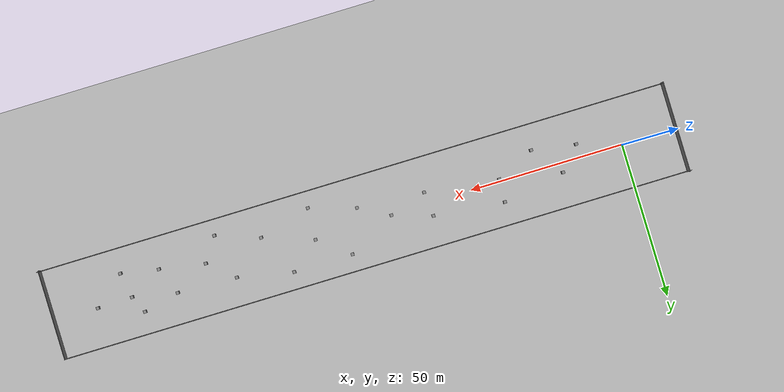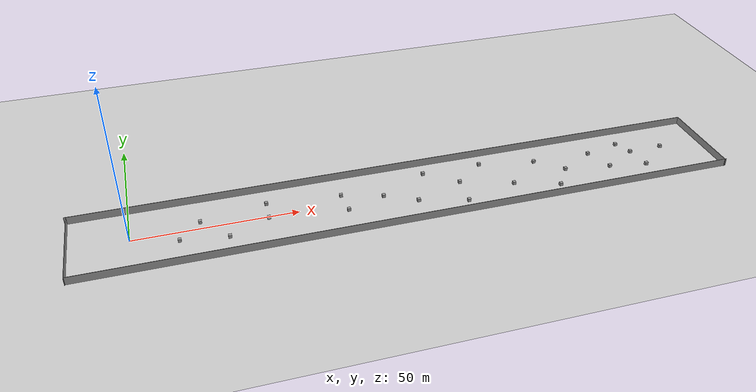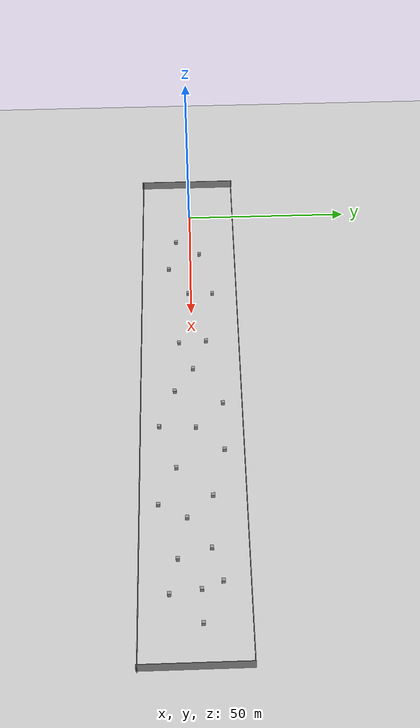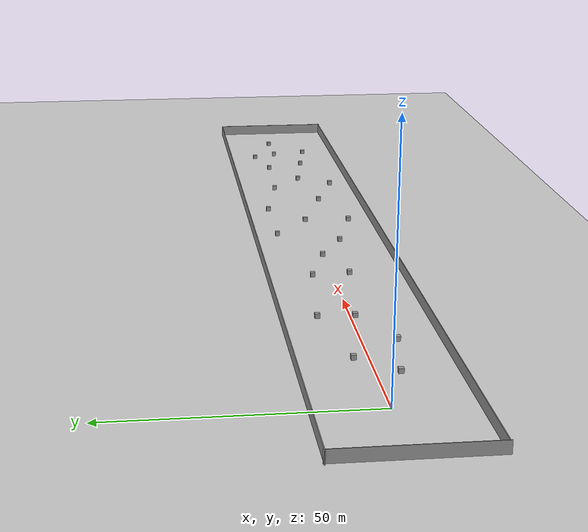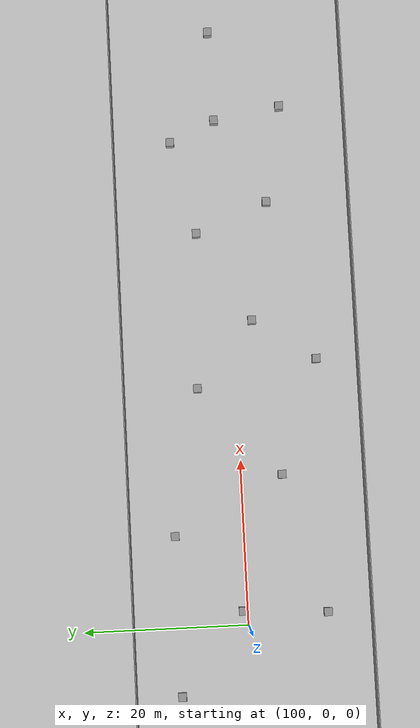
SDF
<sdf version="1.6">
 <world name="default">
  <light name="sun" type="directional">
   <pose>0 0 10 0 -0 0</pose>
   <diffuse>0.8 0.8 0.8 1</diffuse>
   <specular>0.2 0.2 0.2 1</specular>
   <attenuation>
    <range>1000</range>
    <constant>0.9</constant>
    <linear>0.01</linear>
    <quadratic>0.001</quadratic>
   </attenuation>
   <direction>-0.5 0.1 -0.9</direction>
  </light>
  <model name="ground_plane">
   <static>1</static>
   <link name="link">
    <collision name="collision">
     <geometry><plane><normal>0 0 1</normal><size>100 100</size></plane></geometry>
     <surface>
      <contact><collide_bitmask>65535</collide_bitmask></contact>
      <friction><ode><mu>100</mu><mu2>50</mu2></ode></friction>
     </surface>
    </collision>
    <visual name="visual">
     <cast_shadows>0</cast_shadows>
     <geometry><plane><normal>0 0 1</normal><size>100 100</size></plane></geometry>
     <material>
      <script><uri>file://media/materials/scripts/gazebo.material</uri><name>Gazebo/Grey</name></script>
     </material>
    </visual>
   </link>
  </model>
  <gravity>0 0 -9.8</gravity>
  <magnetic_field>6e-06 2.3e-05 -4.2e-05</magnetic_field>
  <atmosphere type="adiabatic"/>
  <physics name="default_physics" default="0" type="ode">
   <max_step_size>0.001</max_step_size>
   <real_time_factor>1</real_time_factor>
   <real_time_update_rate>1000</real_time_update_rate>
  </physics>
  <scene><ambient>0.4 0.4 0.4 1</ambient><background>0.7 0.7 0.7 1</background><shadows>1</shadows></scene>
  <audio><device>default</device></audio>
  <spherical_coordinates>
   <surface_model>EARTH_WGS84</surface_model>
   <latitude_deg>0</latitude_deg>
   <longitude_deg>0</longitude_deg>
   <elevation>0</elevation>
   <heading_deg>0</heading_deg>
  </spherical_coordinates>
  <model name="road">
   <pose>85.3073 -0.559593 0 0 -0 0</pose>
   <link name="Wall_13">
    <collision name="Wall_13_Collision">
     <geometry><box><size>206 0.15 2.5</size></box></geometry>
     <pose>0 0 1.25 0 -0 0</pose>
    </collision>
    <visual name="Wall_13_Visual">
     <pose>0 0 1.25 0 -0 0</pose>
     <geometry><box><size>206 0.15 2.5</size></box></geometry>
     <material>
      <script><uri>file://media/materials/scripts/gazebo.material</uri><name>Gazebo/Grey</name></script>
      <ambient>1 1 1 1</ambient>
     </material>
     <meta><layer>0</layer></meta>
    </visual>
    <pose>0.356298 -14.3749 0 0 -0 0</pose>
   </link>
   <link name="Wall_16">
    <collision name="Wall_16_Collision">
     <geometry><box><size>206.25 0.15 2.5</size></box></geometry>
     <pose>0 0 1.25 0 -0 0</pose>
    </collision>
    <visual name="Wall_16_Visual">
     <pose>0 0 1.25 0 -0 0</pose>
     <geometry><box><size>206.25 0.15 2.5</size></box></geometry>
     <material>
      <script><uri>file://media/materials/scripts/gazebo.material</uri><name>Gazebo/Grey</name></script>
      <ambient>1 1 1 1</ambient>
     </material>
     <meta><layer>0</layer></meta>
    </visual>
    <pose>-0.231302 14.4889 0 0 -0 0</pose>
   </link>
   <link name="Wall_17">
    <collision name="Wall_17_Collision">
     <geometry><box><size>29.25 0.15 2.5</size></box></geometry>
     <pose>0 0 1.25 0 -0 0</pose>
    </collision>
    <visual name="Wall_17_Visual">
     <pose>0 0 1.25 0 -0 0</pose>
     <geometry><box><size>29.25 0.15 2.5</size></box></geometry>
     <material>
      <script><uri>file://media/materials/scripts/gazebo.material</uri><name>Gazebo/Grey</name></script>
      <ambient>1 1 1 1</ambient>
     </material>
     <meta><layer>0</layer></meta>
    </visual>
    <pose>102.819 -0.061095 0 0 -0 -1.5708</pose>
   </link>
   <link name="Wall_19">
    <collision name="Wall_19_Collision">
     <geometry><box><size>29.5 0.15 2.5</size></box></geometry>
     <pose>0 0 1.25 0 -0 0</pose>
    </collision>
    <visual name="Wall_19_Visual">
     <pose>0 0 1.25 0 -0 0</pose>
     <geometry><box><size>29.5 0.15 2.5</size></box></geometry>
     <material>
      <script><uri>file://media/materials/scripts/gazebo.material</uri><name>Gazebo/Grey</name></script>
      <ambient>1 1 1 1</ambient>
     </material>
     <meta><layer>0</layer></meta>
    </visual>
    <pose>-102.723 0 0 0 -0 -1.5708</pose>
   </link>
   <static>1</static>
  </model>
  <model name="unit_box">
   <pose>28.2188 -6.73366 0.499995 0 1e-05 0</pose>
   <link name="link">
    <inertial>
     <mass>1</mass>
     <inertia>
      <ixx>0.166667</ixx>
      <ixy>0</ixy>
      <ixz>0</ixz>
      <iyy>0.166667</iyy>
      <iyz>0</iyz>
      <izz>0.166667</izz>
     </inertia>
    </inertial>
    <collision name="collision"><geometry><box><size>1 1 1</size></box></geometry></collision>
    <visual name="visual">
     <geometry><box><size>1 1 1</size></box></geometry>
     <material>
      <script><name>Gazebo/Grey</name><uri>file://media/materials/scripts/gazebo.material</uri></script>
     </material>
    </visual>
   </link>
  </model>
  <model name="unit_box_0">
   <pose>40.8851 6.56253 0.499995 -1e-05 -0 -0</pose>
   <link name="link">
    <inertial>
     <mass>1</mass>
     <inertia>
      <ixx>0.166667</ixx>
      <ixy>0</ixy>
      <ixz>0</ixz>
      <iyy>0.166667</iyy>
      <iyz>0</iyz>
      <izz>0.166667</izz>
     </inertia>
    </inertial>
    <collision name="collision"><geometry><box><size>1 1 1</size></box></geometry></collision>
    <visual name="visual">
     <geometry><box><size>1 1 1</size></box></geometry>
     <material>
      <script><name>Gazebo/Grey</name><uri>file://media/materials/scripts/gazebo.material</uri></script>
     </material>
    </visual>
   </link>
  </model>
  <model name="unit_box_1">
   <pose>40.5515 -0.823491 0.499995 0 1e-05 0</pose>
   <link name="link">
    <inertial>
     <mass>1</mass>
     <inertia>
      <ixx>0.166667</ixx>
      <ixy>0</ixy>
      <ixz>0</ixz>
      <iyy>0.166667</iyy>
      <iyz>0</iyz>
      <izz>0.166667</izz>
     </inertia>
    </inertial>
    <collision name="collision"><geometry><box><size>1 1 1</size></box></geometry></collision>
    <visual name="visual">
     <geometry><box><size>1 1 1</size></box></geometry>
     <material>
      <script><name>Gazebo/Grey</name><uri>file://media/materials/scripts/gazebo.material</uri></script>
     </material>
    </visual>
   </link>
  </model>
  <model name="unit_box_2">
   <pose>64.499 -3.78517 0.499995 -1e-05 -0 -0</pose>
   <link name="link">
    <inertial>
     <mass>1</mass>
     <inertia>
      <ixx>0.166667</ixx>
      <ixy>0</ixy>
      <ixz>0</ixz>
      <iyy>0.166667</iyy>
      <iyz>0</iyz>
      <izz>0.166667</izz>
     </inertia>
    </inertial>
    <collision name="collision"><geometry><box><size>1 1 1</size></box></geometry></collision>
    <visual name="visual">
     <geometry><box><size>1 1 1</size></box></geometry>
     <material>
      <script><name>Gazebo/Grey</name><uri>file://media/materials/scripts/gazebo.material</uri></script>
     </material>
    </visual>
   </link>
  </model>
  <model name="unit_box_3">
   <pose>63.826 4.20021 0.499995 0 1e-05 0</pose>
   <link name="link">
    <inertial>
     <mass>1</mass>
     <inertia>
      <ixx>0.166667</ixx>
      <ixy>0</ixy>
      <ixz>0</ixz>
      <iyy>0.166667</iyy>
      <iyz>0</iyz>
      <izz>0.166667</izz>
     </inertia>
    </inertial>
    <collision name="collision"><geometry><box><size>1 1 1</size></box></geometry></collision>
    <visual name="visual">
     <geometry><box><size>1 1 1</size></box></geometry>
     <material>
      <script><name>Gazebo/Grey</name><uri>file://media/materials/scripts/gazebo.material</uri></script>
     </material>
    </visual>
   </link>
  </model>
  <model name="unit_box_4">
   <pose>86.2836 -5.2195 0.499995 -1e-05 -0 -0</pose>
   <link name="link">
    <inertial>
     <mass>1</mass>
     <inertia>
      <ixx>0.166667</ixx>
      <ixy>0</ixy>
      <ixz>0</ixz>
      <iyy>0.166667</iyy>
      <iyz>0</iyz>
      <izz>0.166667</izz>
     </inertia>
    </inertial>
    <collision name="collision"><geometry><box><size>1 1 1</size></box></geometry></collision>
    <visual name="visual">
     <geometry><box><size>1 1 1</size></box></geometry>
     <material>
      <script><name>Gazebo/Grey</name><uri>file://media/materials/scripts/gazebo.material</uri></script>
     </material>
    </visual>
   </link>
  </model>
  <model name="unit_box_5">
   <pose>76.5257 0.177588 0.499995 0 1e-05 0</pose>
   <link name="link">
    <inertial>
     <mass>1</mass>
     <inertia>
      <ixx>0.166667</ixx>
      <ixy>0</ixy>
      <ixz>0</ixz>
      <iyy>0.166667</iyy>
      <iyz>0</iyz>
      <izz>0.166667</izz>
     </inertia>
    </inertial>
    <collision name="collision"><geometry><box><size>1 1 1</size></box></geometry></collision>
    <visual name="visual">
     <geometry><box><size>1 1 1</size></box></geometry>
     <material>
      <script><name>Gazebo/Grey</name><uri>file://media/materials/scripts/gazebo.material</uri></script>
     </material>
    </visual>
   </link>
  </model>
  <model name="unit_box_6">
   <pose>91.8814 8.44074 0.499995 -1e-05 -0 -0</pose>
   <link name="link">
    <inertial>
     <mass>1</mass>
     <inertia>
      <ixx>0.166667</ixx>
      <ixy>0</ixy>
      <ixz>0</ixz>
      <iyy>0.166667</iyy>
      <iyz>0</iyz>
      <izz>0.166667</izz>
     </inertia>
    </inertial>
    <collision name="collision"><geometry><box><size>1 1 1</size></box></geometry></collision>
    <visual name="visual">
     <geometry><box><size>1 1 1</size></box></geometry>
     <material>
      <script><name>Gazebo/Grey</name><uri>file://media/materials/scripts/gazebo.material</uri></script>
     </material>
    </visual>
   </link>
  </model>
  <model name="unit_box_7">
   <pose>101.199 -9.6524 0.499995 0 1e-05 0</pose>
   <link name="link">
    <inertial>
     <mass>1</mass>
     <inertia>
      <ixx>0.166667</ixx>
      <ixy>0</ixy>
      <ixz>0</ixz>
      <iyy>0.166667</iyy>
      <iyz>0</iyz>
      <izz>0.166667</izz>
     </inertia>
    </inertial>
    <collision name="collision"><geometry><box><size>1 1 1</size></box></geometry></collision>
    <visual name="visual">
     <geometry><box><size>1 1 1</size></box></geometry>
     <material>
      <script><name>Gazebo/Grey</name><uri>file://media/materials/scripts/gazebo.material</uri></script>
     </material>
    </visual>
   </link>
  </model>
  <model name="unit_box_8">
   <pose>101.76 0.629923 0.499995 -1e-05 -0 -0</pose>
   <link name="link">
    <inertial>
     <mass>1</mass>
     <inertia>
      <ixx>0.166667</ixx>
      <ixy>0</ixy>
      <ixz>0</ixz>
      <iyy>0.166667</iyy>
      <iyz>0</iyz>
      <izz>0.166667</izz>
     </inertia>
    </inertial>
    <collision name="collision"><geometry><box><size>1 1 1</size></box></geometry></collision>
    <visual name="visual">
     <geometry><box><size>1 1 1</size></box></geometry>
     <material>
      <script><name>Gazebo/Grey</name><uri>file://media/materials/scripts/gazebo.material</uri></script>
     </material>
    </visual>
   </link>
  </model>
  <model name="unit_box_9">
   <pose>111.131 8.45871 0.499995 0 1e-05 0</pose>
   <link name="link">
    <inertial>
     <mass>1</mass>
     <inertia>
      <ixx>0.166667</ixx>
      <ixy>0</ixy>
      <ixz>0</ixz>
      <iyy>0.166667</iyy>
      <iyz>0</iyz>
      <izz>0.166667</izz>
     </inertia>
    </inertial>
    <collision name="collision"><geometry><box><size>1 1 1</size></box></geometry></collision>
    <visual name="visual">
     <geometry><box><size>1 1 1</size></box></geometry>
     <material>
      <script><name>Gazebo/Grey</name><uri>file://media/materials/scripts/gazebo.material</uri></script>
     </material>
    </visual>
   </link>
  </model>
  <model name="unit_box_10">
   <pose>118.054 -4.9532 0.499995 -1e-05 -0 -0</pose>
   <link name="link">
    <inertial>
     <mass>1</mass>
     <inertia>
      <ixx>0.166667</ixx>
      <ixy>0</ixy>
      <ixz>0</ixz>
      <iyy>0.166667</iyy>
      <iyz>0</iyz>
      <izz>0.166667</izz>
     </inertia>
    </inertial>
    <collision name="collision"><geometry><box><size>1 1 1</size></box></geometry></collision>
    <visual name="visual">
     <geometry><box><size>1 1 1</size></box></geometry>
     <material>
      <script><name>Gazebo/Grey</name><uri>file://media/materials/scripts/gazebo.material</uri></script>
     </material>
    </visual>
   </link>
  </model>
  <model name="unit_box_11">
   <pose>129.049 4.87898 0.499995 0 1e-05 0</pose>
   <link name="link">
    <inertial>
     <mass>1</mass>
     <inertia>
      <ixx>0.166667</ixx>
      <ixy>0</ixy>
      <ixz>0</ixz>
      <iyy>0.166667</iyy>
      <iyz>0</iyz>
      <izz>0.166667</izz>
     </inertia>
    </inertial>
    <collision name="collision"><geometry><box><size>1 1 1</size></box></geometry></collision>
    <visual name="visual">
     <geometry><box><size>1 1 1</size></box></geometry>
     <material>
      <script><name>Gazebo/Grey</name><uri>file://media/materials/scripts/gazebo.material</uri></script>
     </material>
    </visual>
   </link>
  </model>
  <model name="unit_box_12">
   <pose>132.063 -9.89109 0.499995 -1e-05 -0 -0</pose>
   <link name="link">
    <inertial>
     <mass>1</mass>
     <inertia>
      <ixx>0.166667</ixx>
      <ixy>0</ixy>
      <ixz>0</ixz>
      <iyy>0.166667</iyy>
      <iyz>0</iyz>
      <izz>0.166667</izz>
     </inertia>
    </inertial>
    <collision name="collision"><geometry><box><size>1 1 1</size></box></geometry></collision>
    <visual name="visual">
     <geometry><box><size>1 1 1</size></box></geometry>
     <material>
      <script><name>Gazebo/Grey</name><uri>file://media/materials/scripts/gazebo.material</uri></script>
     </material>
    </visual>
   </link>
  </model>
  <model name="unit_box_13">
   <pose>137.197 -2.22184 0.499995 0 1e-05 0</pose>
   <link name="link">
    <inertial>
     <mass>1</mass>
     <inertia>
      <ixx>0.166667</ixx>
      <ixy>0</ixy>
      <ixz>0</ixz>
      <iyy>0.166667</iyy>
      <iyz>0</iyz>
      <izz>0.166667</izz>
     </inertia>
    </inertial>
    <collision name="collision"><geometry><box><size>1 1 1</size></box></geometry></collision>
    <visual name="visual">
     <geometry><box><size>1 1 1</size></box></geometry>
     <material>
      <script><name>Gazebo/Grey</name><uri>file://media/materials/scripts/gazebo.material</uri></script>
     </material>
    </visual>
   </link>
  </model>
  <model name="unit_box_14">
   <pose>148.368 4.11836 0.499995 -1e-05 -0 -0</pose>
   <link name="link">
    <inertial>
     <mass>1</mass>
     <inertia>
      <ixx>0.166667</ixx>
      <ixy>0</ixy>
      <ixz>0</ixz>
      <iyy>0.166667</iyy>
      <iyz>0</iyz>
      <izz>0.166667</izz>
     </inertia>
    </inertial>
    <collision name="collision"><geometry><box><size>1 1 1</size></box></geometry></collision>
    <visual name="visual">
     <geometry><box><size>1 1 1</size></box></geometry>
     <material>
      <script><name>Gazebo/Grey</name><uri>file://media/materials/scripts/gazebo.material</uri></script>
     </material>
    </visual>
   </link>
  </model>
  <model name="unit_box_15">
   <pose>151.959 -4.76447 0.499995 0 1e-05 0</pose>
   <link name="link">
    <inertial>
     <mass>1</mass>
     <inertia>
      <ixx>0.166667</ixx>
      <ixy>0</ixy>
      <ixz>0</ixz>
      <iyy>0.166667</iyy>
      <iyz>0</iyz>
      <izz>0.166667</izz>
     </inertia>
    </inertial>
    <collision name="collision"><geometry><box><size>1 1 1</size></box></geometry></collision>
    <visual name="visual">
     <geometry><box><size>1 1 1</size></box></geometry>
     <material>
      <script><name>Gazebo/Grey</name><uri>file://media/materials/scripts/gazebo.material</uri></script>
     </material>
    </visual>
   </link>
  </model>
  <model name="unit_box_16">
   <pose>162.62 1.2592 0.499995 -1e-05 -0 -0</pose>
   <link name="link">
    <inertial>
     <mass>1</mass>
     <inertia>
      <ixx>0.166667</ixx>
      <ixy>0</ixy>
      <ixz>0</ixz>
      <iyy>0.166667</iyy>
      <iyz>0</iyz>
      <izz>0.166667</izz>
     </inertia>
    </inertial>
    <collision name="collision"><geometry><box><size>1 1 1</size></box></geometry></collision>
    <visual name="visual">
     <geometry><box><size>1 1 1</size></box></geometry>
     <material>
      <script><name>Gazebo/Grey</name><uri>file://media/materials/scripts/gazebo.material</uri></script>
     </material>
    </visual>
   </link>
  </model>
  <model name="unit_box_17">
   <pose>164.041 -6.98816 0.499995 0 1e-05 0</pose>
   <link name="link">
    <inertial>
     <mass>1</mass>
     <inertia>
      <ixx>0.166667</ixx>
      <ixy>0</ixy>
      <ixz>0</ixz>
      <iyy>0.166667</iyy>
      <iyz>0</iyz>
      <izz>0.166667</izz>
     </inertia>
    </inertial>
    <collision name="collision"><geometry><box><size>1 1 1</size></box></geometry></collision>
    <visual name="visual">
     <geometry><box><size>1 1 1</size></box></geometry>
     <material>
      <script><name>Gazebo/Grey</name><uri>file://media/materials/scripts/gazebo.material</uri></script>
     </material>
    </visual>
   </link>
  </model>
  <model name="unit_box_18">
   <pose>160.019 6.85083 0.499995 -1e-05 -0 -0</pose>
   <link name="link">
    <inertial>
     <mass>1</mass>
     <inertia>
      <ixx>0.166667</ixx>
      <ixy>0</ixy>
      <ixz>0</ixz>
      <iyy>0.166667</iyy>
      <iyz>0</iyz>
      <izz>0.166667</izz>
     </inertia>
    </inertial>
    <collision name="collision"><geometry><box><size>1 1 1</size></box></geometry></collision>
    <visual name="visual">
     <geometry><box><size>1 1 1</size></box></geometry>
     <material>
      <script><name>Gazebo/Grey</name><uri>file://media/materials/scripts/gazebo.material</uri></script>
     </material>
    </visual>
   </link>
  </model>
  <model name="unit_box_19">
   <pose>173.96 1.486 0.499995 0 1e-05 0</pose>
   <link name="link">
    <inertial>
     <mass>1</mass>
     <inertia>
      <ixx>0.166667</ixx>
      <ixy>0</ixy>
      <ixz>0</ixz>
      <iyy>0.166667</iyy>
      <iyz>0</iyz>
      <izz>0.166667</izz>
     </inertia>
    </inertial>
    <collision name="collision"><geometry><box><size>1 1 1</size></box></geometry></collision>
    <visual name="visual">
     <geometry><box><size>1 1 1</size></box></geometry>
     <material>
      <script><name>Gazebo/Grey</name><uri>file://media/materials/scripts/gazebo.material</uri></script>
     </material>
    </visual>
   </link>
  </model>
  <model name="unit_box_20">
   <pose>20.5551 2.90861 0.499995 -1e-05 -0 0</pose>
   <link name="link">
    <inertial>
     <mass>1</mass>
     <inertia>
      <ixx>0.166667</ixx>
      <ixy>0</ixy>
      <ixz>0</ixz>
      <iyy>0.166667</iyy>
      <iyz>0</iyz>
      <izz>0.166667</izz>
     </inertia>
    </inertial>
    <collision name="collision"><geometry><box><size>1 1 1</size></box></geometry></collision>
    <visual name="visual">
     <geometry><box><size>1 1 1</size></box></geometry>
     <material>
      <script><name>Gazebo/Grey</name><uri>file://media/materials/scripts/gazebo.material</uri></script>
     </material>
    </visual>
   </link>
  </model>
  <model name="unit_box_21">
   <pose>14.001 -4.4199 0.5 0 -0 0</pose>
   <link name="link">
    <inertial>
     <mass>1</mass>
     <inertia>
      <ixx>0.166667</ixx>
      <ixy>0</ixy>
      <ixz>0</ixz>
      <iyy>0.166667</iyy>
      <iyz>0</iyz>
      <izz>0.166667</izz>
     </inertia>
    </inertial>
    <collision name="collision"><geometry><box><size>1 1 1</size></box></geometry></collision>
    <visual name="visual">
     <geometry><box><size>1 1 1</size></box></geometry>
     <material>
      <script><name>Gazebo/Grey</name><uri>file://media/materials/scripts/gazebo.material</uri></script>
     </material>
    </visual>
   </link>
  </model>
 </world>
</sdf>
